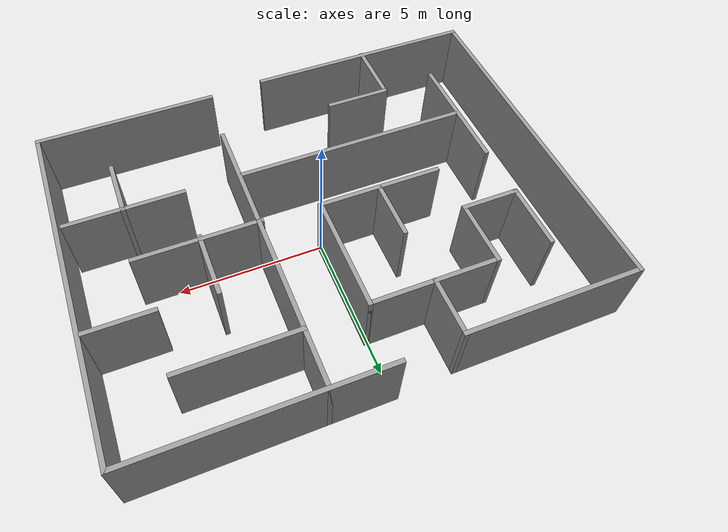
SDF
<?xml version='1.0'?>
<sdf version='1.7'>
  <model name='maze2'>
    <pose>0.061227 -0.146479 0 0 -0 0</pose>
    <link name='Wall_100'>
      <collision name='Wall_100_Collision'>
        <geometry>
          <box>
            <size>4 0.15 2.5</size>
          </box>
        </geometry>
        <pose>0 0 1.25 0 -0 0</pose>
      </collision>
      <visual name='Wall_100_Visual'>
        <pose>0 0 1.25 0 -0 0</pose>
        <geometry>
          <box>
            <size>4 0.15 2.5</size>
          </box>
        </geometry>
        <material>
          <script>
            <uri>file://media/materials/scripts/gazebo.material</uri>
            <name>Gazebo/Grey</name>
          </script>
          <ambient>1 1 1 1</ambient>
        </material>
        <meta>
          <layer>0</layer>
        </meta>
      </visual>
      <pose>5.82452 -1.92681 0 0 -0 0</pose>
    </link>
    <link name='Wall_102'>
      <collision name='Wall_102_Collision'>
        <geometry>
          <box>
            <size>2 0.15 2.5</size>
          </box>
        </geometry>
        <pose>0 0 1.25 0 -0 0</pose>
      </collision>
      <visual name='Wall_102_Visual'>
        <pose>0 0 1.25 0 -0 0</pose>
        <geometry>
          <box>
            <size>2 0.15 2.5</size>
          </box>
        </geometry>
        <material>
          <script>
            <uri>file://media/materials/scripts/gazebo.material</uri>
            <name>Gazebo/Grey</name>
          </script>
          <ambient>1 1 1 1</ambient>
        </material>
        <meta>
          <layer>0</layer>
        </meta>
      </visual>
      <pose>5.87065 -2.85181 0 0 -0 -1.5708</pose>
    </link>
    <link name='Wall_64'>
      <collision name='Wall_64_Collision'>
        <geometry>
          <box>
            <size>2.25 0.15 2.5</size>
          </box>
        </geometry>
        <pose>0 0 1.25 0 -0 0</pose>
      </collision>
      <visual name='Wall_64_Visual'>
        <pose>0 0 1.25 0 -0 0</pose>
        <geometry>
          <box>
            <size>2.25 0.15 2.5</size>
          </box>
        </geometry>
        <material>
          <script>
            <uri>file://media/materials/scripts/gazebo.material</uri>
            <name>Gazebo/Grey</name>
          </script>
          <ambient>1 1 1 1</ambient>
        </material>
        <meta>
          <layer>0</layer>
        </meta>
      </visual>
      <pose>-6.07681 2.97681 0 0 -0 -1.5708</pose>
    </link>
    <link name='Wall_65'>
      <collision name='Wall_65_Collision'>
        <geometry>
          <box>
            <size>2 0.15 2.5</size>
          </box>
        </geometry>
        <pose>0 0 1.25 0 -0 0</pose>
      </collision>
      <visual name='Wall_65_Visual'>
        <pose>0 0 1.25 0 -0 0</pose>
        <geometry>
          <box>
            <size>2 0.15 2.5</size>
          </box>
        </geometry>
        <material>
          <script>
            <uri>file://media/materials/scripts/gazebo.material</uri>
            <name>Gazebo/Grey</name>
          </script>
          <ambient>1 1 1 1</ambient>
        </material>
        <meta>
          <layer>0</layer>
        </meta>
      </visual>
      <pose>-5.15181 1.92681 0 0 -0 0</pose>
    </link>
    <link name='Wall_66'>
      <collision name='Wall_66_Collision'>
        <geometry>
          <box>
            <size>2.25 0.15 2.5</size>
          </box>
        </geometry>
        <pose>0 0 1.25 0 -0 0</pose>
      </collision>
      <visual name='Wall_66_Visual'>
        <pose>0 0 1.25 0 -0 0</pose>
        <geometry>
          <box>
            <size>2.25 0.15 2.5</size>
          </box>
        </geometry>
        <material>
          <script>
            <uri>file://media/materials/scripts/gazebo.material</uri>
            <name>Gazebo/Grey</name>
          </script>
          <ambient>1 1 1 1</ambient>
        </material>
        <meta>
          <layer>0</layer>
        </meta>
      </visual>
      <pose>-4.22681 2.97681 0 0 -0 1.5708</pose>
    </link>
    <link name='Wall_67'>
      <collision name='Wall_67_Collision'>
        <geometry>
          <box>
            <size>2.25 0.15 2.5</size>
          </box>
        </geometry>
        <pose>0 0 1.25 0 -0 0</pose>
      </collision>
      <visual name='Wall_67_Visual'>
        <pose>0 0 1.25 0 -0 0</pose>
        <geometry>
          <box>
            <size>2.25 0.15 2.5</size>
          </box>
        </geometry>
        <material>
          <script>
            <uri>file://media/materials/scripts/gazebo.material</uri>
            <name>Gazebo/Grey</name>
          </script>
          <ambient>1 1 1 1</ambient>
        </material>
        <meta>
          <layer>0</layer>
        </meta>
      </visual>
      <pose>-3.17681 4.02681 0 0 -0 0</pose>
    </link>
    <link name='Wall_68'>
      <collision name='Wall_68_Collision'>
        <geometry>
          <box>
            <size>2 0.15 2.5</size>
          </box>
        </geometry>
        <pose>0 0 1.25 0 -0 0</pose>
      </collision>
      <visual name='Wall_68_Visual'>
        <pose>0 0 1.25 0 -0 0</pose>
        <geometry>
          <box>
            <size>2 0.15 2.5</size>
          </box>
        </geometry>
        <material>
          <script>
            <uri>file://media/materials/scripts/gazebo.material</uri>
            <name>Gazebo/Grey</name>
          </script>
          <ambient>1 1 1 1</ambient>
        </material>
        <meta>
          <layer>0</layer>
        </meta>
      </visual>
      <pose>-2.12681 4.95181 0 0 -0 1.5708</pose>
    </link>
    <link name='Wall_69'>
      <collision name='Wall_69_Collision'>
        <geometry>
          <box>
            <size>6 0.15 2.5</size>
          </box>
        </geometry>
        <pose>0 0 1.25 0 -0 0</pose>
      </collision>
      <visual name='Wall_69_Visual'>
        <pose>0 0 1.25 0 -0 0</pose>
        <geometry>
          <box>
            <size>6 0.15 2.5</size>
          </box>
        </geometry>
        <material>
          <script>
            <uri>file://media/materials/scripts/gazebo.material</uri>
            <name>Gazebo/Grey</name>
          </script>
          <ambient>1 1 1 1</ambient>
        </material>
        <meta>
          <layer>0</layer>
        </meta>
      </visual>
      <pose>-5.05181 5.87681 0 0 -0 3.14159</pose>
    </link>
    <link name='Wall_70'>
      <collision name='Wall_70_Collision'>
        <geometry>
          <box>
            <size>12 0.15 2.5</size>
          </box>
        </geometry>
        <pose>0 0 1.25 0 -0 0</pose>
      </collision>
      <visual name='Wall_70_Visual'>
        <pose>0 0 1.25 0 -0 0</pose>
        <geometry>
          <box>
            <size>12 0.15 2.5</size>
          </box>
        </geometry>
        <material>
          <script>
            <uri>file://media/materials/scripts/gazebo.material</uri>
            <name>Gazebo/Grey</name>
          </script>
          <ambient>1 1 1 1</ambient>
        </material>
        <meta>
          <layer>0</layer>
        </meta>
      </visual>
      <pose>-7.97681 -0.048192 0 0 -0 -1.5708</pose>
    </link>
    <link name='Wall_71'>
      <collision name='Wall_71_Collision'>
        <geometry>
          <box>
            <size>8 0.15 2.5</size>
          </box>
        </geometry>
        <pose>0 0 1.25 0 -0 0</pose>
      </collision>
      <visual name='Wall_71_Visual'>
        <pose>0 0 1.25 0 -0 0</pose>
        <geometry>
          <box>
            <size>8 0.15 2.5</size>
          </box>
        </geometry>
        <material>
          <script>
            <uri>file://media/materials/scripts/gazebo.material</uri>
            <name>Gazebo/Grey</name>
          </script>
          <ambient>1 1 1 1</ambient>
        </material>
        <meta>
          <layer>0</layer>
        </meta>
      </visual>
      <pose>-4.05181 -5.97319 0 0 -0 0</pose>
    </link>
    <link name='Wall_73'>
      <collision name='Wall_73_Collision'>
        <geometry>
          <box>
            <size>2.25 0.15 2.5</size>
          </box>
        </geometry>
        <pose>0 0 1.25 0 -0 0</pose>
      </collision>
      <visual name='Wall_73_Visual'>
        <pose>0 0 1.25 0 -0 0</pose>
        <geometry>
          <box>
            <size>2.25 0.15 2.5</size>
          </box>
        </geometry>
        <material>
          <script>
            <uri>file://media/materials/scripts/gazebo.material</uri>
            <name>Gazebo/Grey</name>
          </script>
          <ambient>1 1 1 1</ambient>
        </material>
        <meta>
          <layer>0</layer>
        </meta>
      </visual>
      <pose>-3.06387 -3.89794 0 0 -0 3.14159</pose>
    </link>
    <link name='Wall_74'>
      <collision name='Wall_74_Collision'>
        <geometry>
          <box>
            <size>2.25 0.15 2.5</size>
          </box>
        </geometry>
        <pose>0 0 1.25 0 -0 0</pose>
      </collision>
      <visual name='Wall_74_Visual'>
        <pose>0 0 1.25 0 -0 0</pose>
        <geometry>
          <box>
            <size>2.25 0.15 2.5</size>
          </box>
        </geometry>
        <material>
          <script>
            <uri>file://media/materials/scripts/gazebo.material</uri>
            <name>Gazebo/Grey</name>
          </script>
          <ambient>1 1 1 1</ambient>
        </material>
        <meta>
          <layer>0</layer>
        </meta>
      </visual>
      <pose>-4.11387 -4.94794 0 0 -0 -1.5708</pose>
    </link>
    <link name='Wall_76'>
      <collision name='Wall_76_Collision'>
        <geometry>
          <box>
            <size>2.25 0.15 2.5</size>
          </box>
        </geometry>
        <pose>0 0 1.25 0 -0 0</pose>
      </collision>
      <visual name='Wall_76_Visual'>
        <pose>0 0 1.25 0 -0 0</pose>
        <geometry>
          <box>
            <size>2.25 0.15 2.5</size>
          </box>
        </geometry>
        <material>
          <script>
            <uri>file://media/materials/scripts/gazebo.material</uri>
            <name>Gazebo/Grey</name>
          </script>
          <ambient>1 1 1 1</ambient>
        </material>
        <meta>
          <layer>0</layer>
        </meta>
      </visual>
      <pose>-1.07681 4.02681 0 0 -0 0</pose>
    </link>
    <link name='Wall_77'>
      <collision name='Wall_77_Collision'>
        <geometry>
          <box>
            <size>4 0.15 2.5</size>
          </box>
        </geometry>
        <pose>0 0 1.25 0 -0 0</pose>
      </collision>
      <visual name='Wall_77_Visual'>
        <pose>0 0 1.25 0 -0 0</pose>
        <geometry>
          <box>
            <size>4 0.15 2.5</size>
          </box>
        </geometry>
        <material>
          <script>
            <uri>file://media/materials/scripts/gazebo.material</uri>
            <name>Gazebo/Grey</name>
          </script>
          <ambient>1 1 1 1</ambient>
        </material>
        <meta>
          <layer>0</layer>
        </meta>
      </visual>
      <pose>-0.026809 2.10181 0 0 -0 -1.5708</pose>
    </link>
    <link name='Wall_78'>
      <collision name='Wall_78_Collision'>
        <geometry>
          <box>
            <size>4.25 0.15 2.5</size>
          </box>
        </geometry>
        <pose>0 0 1.25 0 -0 0</pose>
      </collision>
      <visual name='Wall_78_Visual'>
        <pose>0 0 1.25 0 -0 0</pose>
        <geometry>
          <box>
            <size>4.25 0.15 2.5</size>
          </box>
        </geometry>
        <material>
          <script>
            <uri>file://media/materials/scripts/gazebo.material</uri>
            <name>Gazebo/Grey</name>
          </script>
          <ambient>1 1 1 1</ambient>
        </material>
        <meta>
          <layer>0</layer>
        </meta>
      </visual>
      <pose>-2.07681 0.176808 0 0 -0 3.14159</pose>
    </link>
    <link name='Wall_80'>
      <collision name='Wall_80_Collision'>
        <geometry>
          <box>
            <size>2 0.15 2.5</size>
          </box>
        </geometry>
        <pose>0 0 1.25 0 -0 0</pose>
      </collision>
      <visual name='Wall_80_Visual'>
        <pose>0 0 1.25 0 -0 0</pose>
        <geometry>
          <box>
            <size>2 0.15 2.5</size>
          </box>
        </geometry>
        <material>
          <script>
            <uri>file://media/materials/scripts/gazebo.material</uri>
            <name>Gazebo/Grey</name>
          </script>
          <ambient>1 1 1 1</ambient>
        </material>
        <meta>
          <layer>0</layer>
        </meta>
      </visual>
      <pose>-2.05409 1.17091 0 0 -0 -1.5708</pose>
    </link>
    <link name='Wall_82'>
      <collision name='Wall_82_Collision'>
        <geometry>
          <box>
            <size>4.25 0.15 2.5</size>
          </box>
        </geometry>
        <pose>0 0 1.25 0 -0 0</pose>
      </collision>
      <visual name='Wall_82_Visual'>
        <pose>0 0 1.25 0 -0 0</pose>
        <geometry>
          <box>
            <size>4.25 0.15 2.5</size>
          </box>
        </geometry>
        <material>
          <script>
            <uri>file://media/materials/scripts/gazebo.material</uri>
            <name>Gazebo/Grey</name>
          </script>
          <ambient>1 1 1 1</ambient>
        </material>
        <meta>
          <layer>0</layer>
        </meta>
      </visual>
      <pose>-6.03658 -1.96545 0 0 -0 -1.5708</pose>
    </link>
    <link name='Wall_84'>
      <collision name='Wall_84_Collision'>
        <geometry>
          <box>
            <size>8 0.15 2.5</size>
          </box>
        </geometry>
        <pose>0 0 1.25 0 -0 0</pose>
      </collision>
      <visual name='Wall_84_Visual'>
        <pose>0 0 1.25 0 -0 0</pose>
        <geometry>
          <box>
            <size>8 0.15 2.5</size>
          </box>
        </geometry>
        <material>
          <script>
            <uri>file://media/materials/scripts/gazebo.material</uri>
            <name>Gazebo/Grey</name>
          </script>
          <ambient>1 1 1 1</ambient>
        </material>
        <meta>
          <layer>0</layer>
        </meta>
      </visual>
      <pose>-2.03113 -1.92681 0 0 -0 0</pose>
    </link>
    <link name='Wall_86'>
      <collision name='Wall_86_Collision'>
        <geometry>
          <box>
            <size>8.25 0.15 2.5</size>
          </box>
        </geometry>
        <pose>0 0 1.25 0 -0 0</pose>
      </collision>
      <visual name='Wall_86_Visual'>
        <pose>0 0 1.25 0 -0 0</pose>
        <geometry>
          <box>
            <size>8.25 0.15 2.5</size>
          </box>
        </geometry>
        <material>
          <script>
            <uri>file://media/materials/scripts/gazebo.material</uri>
            <name>Gazebo/Grey</name>
          </script>
          <ambient>1 1 1 1</ambient>
        </material>
        <meta>
          <layer>0</layer>
        </meta>
      </visual>
      <pose>3.92681 5.99794 0 0 -0 0</pose>
    </link>
    <link name='Wall_87'>
      <collision name='Wall_87_Collision'>
        <geometry>
          <box>
            <size>12 0.15 2.5</size>
          </box>
        </geometry>
        <pose>0 0 1.25 0 -0 0</pose>
      </collision>
      <visual name='Wall_87_Visual'>
        <pose>0 0 1.25 0 -0 0</pose>
        <geometry>
          <box>
            <size>12 0.15 2.5</size>
          </box>
        </geometry>
        <material>
          <script>
            <uri>file://media/materials/scripts/gazebo.material</uri>
            <name>Gazebo/Grey</name>
          </script>
          <ambient>1 1 1 1</ambient>
        </material>
        <meta>
          <layer>0</layer>
        </meta>
      </visual>
      <pose>7.97681 0.072938 0 0 -0 -1.5708</pose>
    </link>
    <link name='Wall_88'>
      <collision name='Wall_88_Collision'>
        <geometry>
          <box>
            <size>6.25 0.15 2.5</size>
          </box>
        </geometry>
        <pose>0 0 1.25 0 -0 0</pose>
      </collision>
      <visual name='Wall_88_Visual'>
        <pose>0 0 1.25 0 -0 0</pose>
        <geometry>
          <box>
            <size>6.25 0.15 2.5</size>
          </box>
        </geometry>
        <material>
          <script>
            <uri>file://media/materials/scripts/gazebo.material</uri>
            <name>Gazebo/Grey</name>
          </script>
          <ambient>1 1 1 1</ambient>
        </material>
        <meta>
          <layer>0</layer>
        </meta>
      </visual>
      <pose>4.92681 -5.85206 0 0 -0 3.14159</pose>
    </link>
    <link name='Wall_90'>
      <collision name='Wall_90_Collision'>
        <geometry>
          <box>
            <size>10 0.15 2.5</size>
          </box>
        </geometry>
        <pose>0 0 1.25 0 -0 0</pose>
      </collision>
      <visual name='Wall_90_Visual'>
        <pose>0 0 1.25 0 -0 0</pose>
        <geometry>
          <box>
            <size>10 0.15 2.5</size>
          </box>
        </geometry>
        <material>
          <script>
            <uri>file://media/materials/scripts/gazebo.material</uri>
            <name>Gazebo/Grey</name>
          </script>
          <ambient>1 1 1 1</ambient>
        </material>
        <meta>
          <layer>0</layer>
        </meta>
      </visual>
      <pose>2.00885 1.07294 0 0 -0 -1.5708</pose>
    </link>
    <link name='Wall_92'>
      <collision name='Wall_92_Collision'>
        <geometry>
          <box>
            <size>4 0.15 2.5</size>
          </box>
        </geometry>
        <pose>0 0 1.25 0 -0 0</pose>
      </collision>
      <visual name='Wall_92_Visual'>
        <pose>0 0 1.25 0 -0 0</pose>
        <geometry>
          <box>
            <size>4 0.15 2.5</size>
          </box>
        </geometry>
        <material>
          <script>
            <uri>file://media/materials/scripts/gazebo.material</uri>
            <name>Gazebo/Grey</name>
          </script>
          <ambient>1 1 1 1</ambient>
        </material>
        <meta>
          <layer>0</layer>
        </meta>
      </visual>
      <pose>3.93385 4.10726 0 0 -0 0</pose>
    </link>
    <link name='Wall_94'>
      <collision name='Wall_94_Collision'>
        <geometry>
          <box>
            <size>4.25 0.15 2.5</size>
          </box>
        </geometry>
        <pose>0 0 1.25 0 -0 0</pose>
      </collision>
      <visual name='Wall_94_Visual'>
        <pose>0 0 1.25 0 -0 0</pose>
        <geometry>
          <box>
            <size>4.25 0.15 2.5</size>
          </box>
        </geometry>
        <material>
          <script>
            <uri>file://media/materials/scripts/gazebo.material</uri>
            <name>Gazebo/Grey</name>
          </script>
          <ambient>1 1 1 1</ambient>
        </material>
        <meta>
          <layer>0</layer>
        </meta>
      </visual>
      <pose>3.97839 0.084548 0 0 -0 0</pose>
    </link>
    <link name='Wall_96'>
      <collision name='Wall_96_Collision'>
        <geometry>
          <box>
            <size>2.25 0.15 2.5</size>
          </box>
        </geometry>
        <pose>0 0 1.25 0 -0 0</pose>
      </collision>
      <visual name='Wall_96_Visual'>
        <pose>0 0 1.25 0 -0 0</pose>
        <geometry>
          <box>
            <size>2.25 0.15 2.5</size>
          </box>
        </geometry>
        <material>
          <script>
            <uri>file://media/materials/scripts/gazebo.material</uri>
            <name>Gazebo/Grey</name>
          </script>
          <ambient>1 1 1 1</ambient>
        </material>
        <meta>
          <layer>0</layer>
        </meta>
      </visual>
      <pose>3.89952 1.04591 0 0 -0 -1.5708</pose>
    </link>
    <link name='Wall_98'>
      <collision name='Wall_98_Collision'>
        <geometry>
          <box>
            <size>2.25 0.15 2.5</size>
          </box>
        </geometry>
        <pose>0 0 1.25 0 -0 0</pose>
      </collision>
      <visual name='Wall_98_Visual'>
        <pose>0 0 1.25 0 -0 0</pose>
        <geometry>
          <box>
            <size>2.25 0.15 2.5</size>
          </box>
        </geometry>
        <material>
          <script>
            <uri>file://media/materials/scripts/gazebo.material</uri>
            <name>Gazebo/Grey</name>
          </script>
          <ambient>1 1 1 1</ambient>
        </material>
        <meta>
          <layer>0</layer>
        </meta>
      </visual>
      <pose>6.79997 2.01545 0 0 -0 0</pose>
    </link>
    <static>1</static>
  </model>
</sdf>
